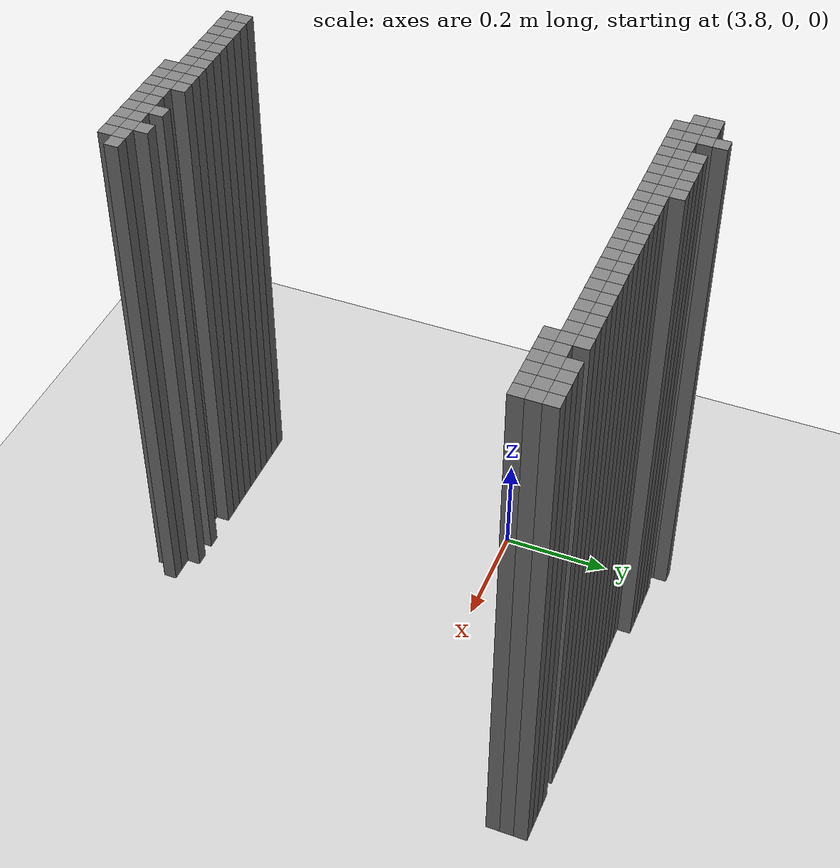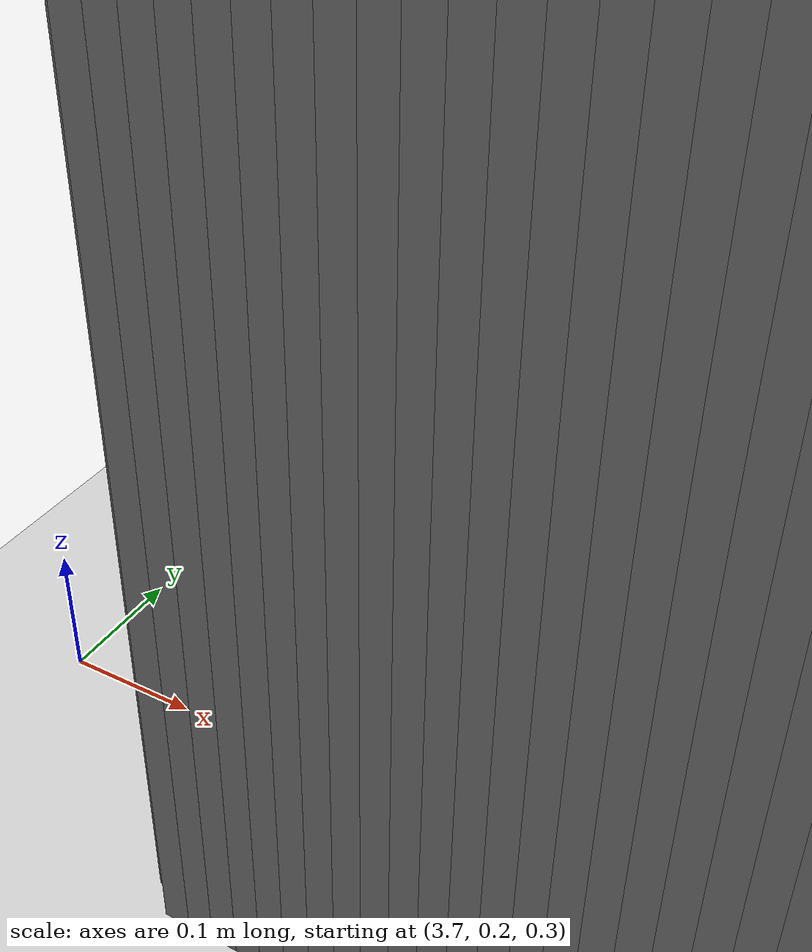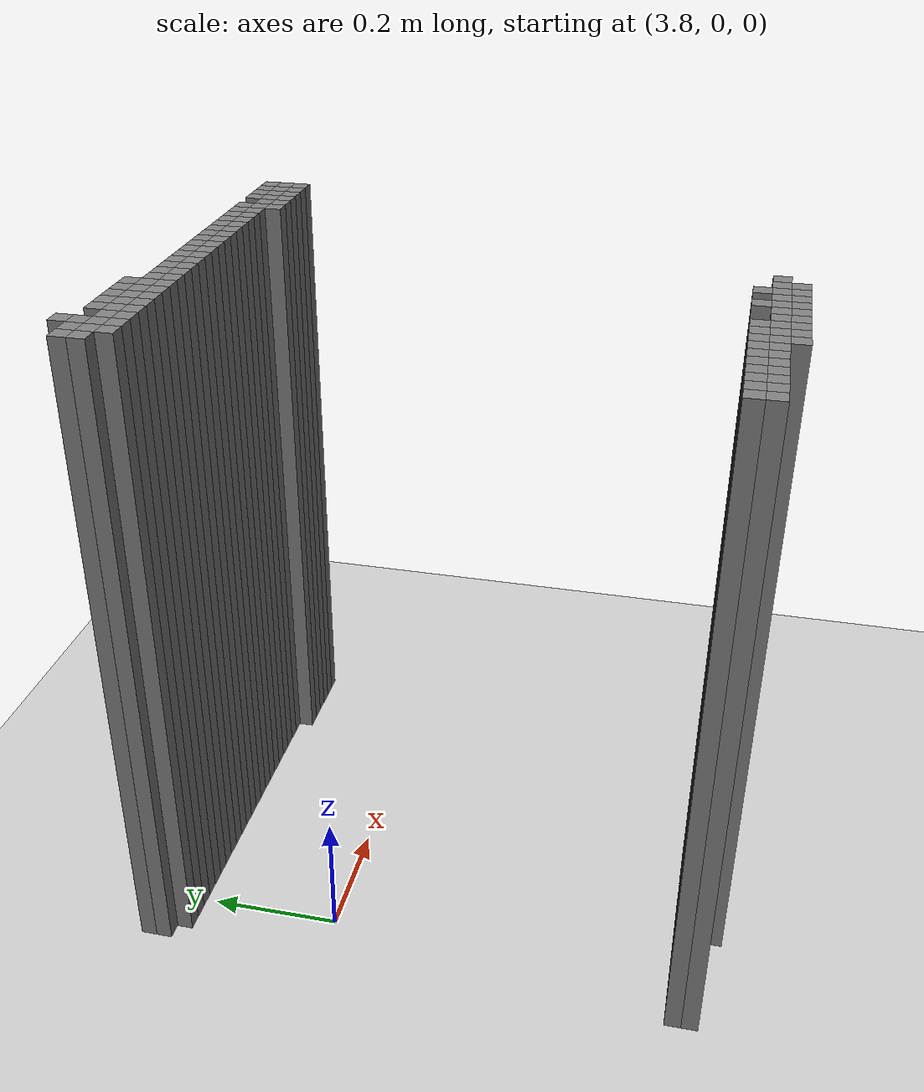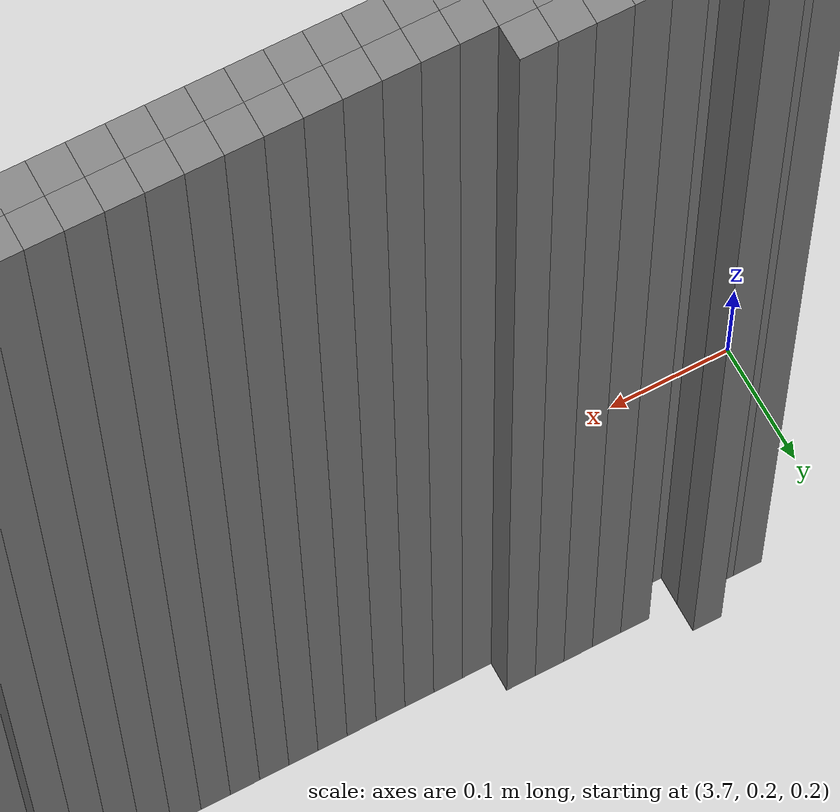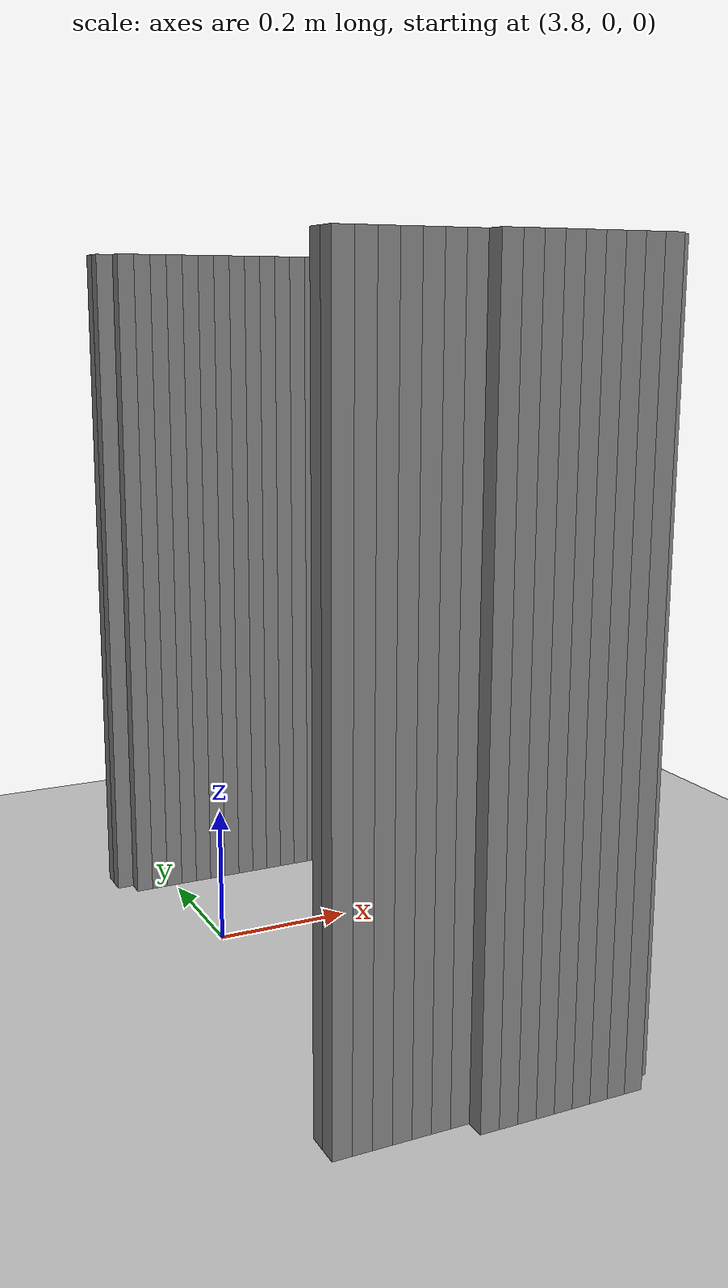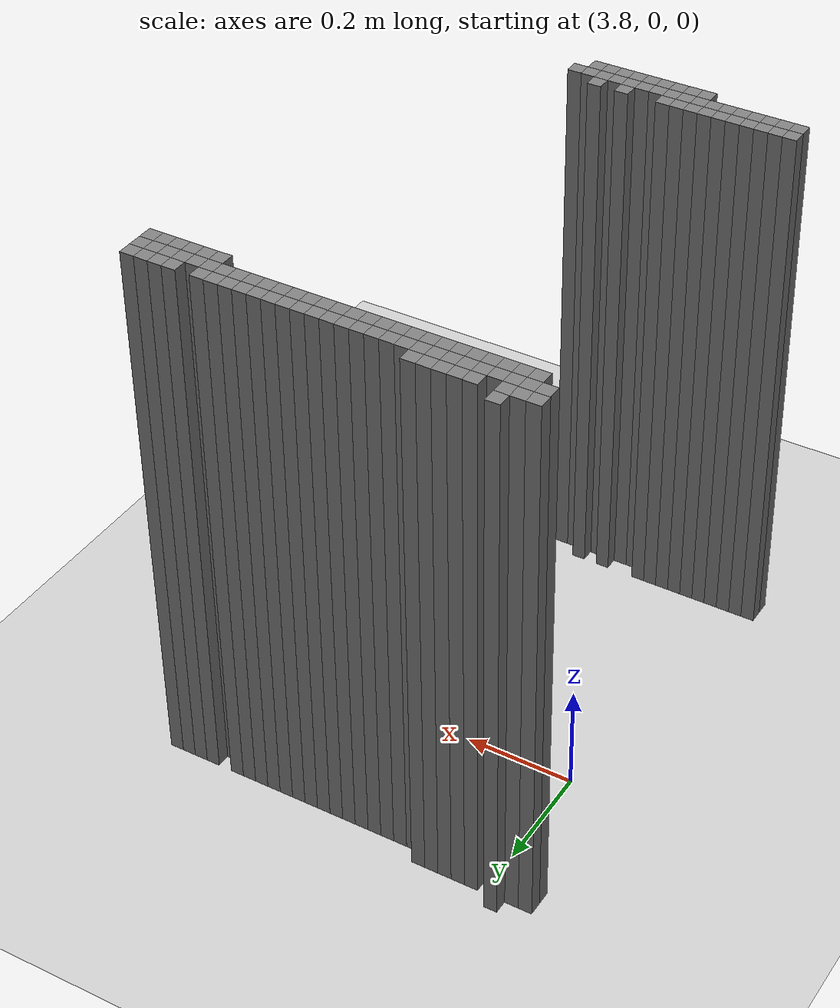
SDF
<sdf version="1.6">
 <world name="map_world">
  <include><uri>model://ground_plane</uri></include>
  <include><uri>model://sun</uri></include>
  <model name="obs_244_37">
   <static>true</static>
   <link name="link">
    <collision name="collision"><geometry><box><size>0.025 0.025 1.0</size></box></geometry></collision>
    <visual name="visual">
     <geometry><box><size>0.025 0.025 1.0</size></box></geometry>
     <material><ambient>0.5 0.5 0.5 1</ambient></material>
    </visual>
   </link>
   <pose>3.7737650000000005 0.30592900000000034 0.5 0 0 0</pose>
  </model>
  <model name="obs_242_38">
   <static>true</static>
   <link name="link">
    <collision name="collision"><geometry><box><size>0.025 0.025 1.0</size></box></geometry></collision>
    <visual name="visual">
     <geometry><box><size>0.025 0.025 1.0</size></box></geometry>
     <material><ambient>0.5 0.5 0.5 1</ambient></material>
    </visual>
   </link>
   <pose>3.7237650000000007 0.280929 0.5 0 0 0</pose>
  </model>
  <model name="obs_243_38">
   <static>true</static>
   <link name="link">
    <collision name="collision"><geometry><box><size>0.025 0.025 1.0</size></box></geometry></collision>
    <visual name="visual">
     <geometry><box><size>0.025 0.025 1.0</size></box></geometry>
     <material><ambient>0.5 0.5 0.5 1</ambient></material>
    </visual>
   </link>
   <pose>3.748765 0.280929 0.5 0 0 0</pose>
  </model>
  <model name="obs_244_38">
   <static>true</static>
   <link name="link">
    <collision name="collision"><geometry><box><size>0.025 0.025 1.0</size></box></geometry></collision>
    <visual name="visual">
     <geometry><box><size>0.025 0.025 1.0</size></box></geometry>
     <material><ambient>0.5 0.5 0.5 1</ambient></material>
    </visual>
   </link>
   <pose>3.7737650000000005 0.280929 0.5 0 0 0</pose>
  </model>
  <model name="obs_246_38">
   <static>true</static>
   <link name="link">
    <collision name="collision"><geometry><box><size>0.025 0.025 1.0</size></box></geometry></collision>
    <visual name="visual">
     <geometry><box><size>0.025 0.025 1.0</size></box></geometry>
     <material><ambient>0.5 0.5 0.5 1</ambient></material>
    </visual>
   </link>
   <pose>3.8237650000000003 0.280929 0.5 0 0 0</pose>
  </model>
  <model name="obs_247_38">
   <static>true</static>
   <link name="link">
    <collision name="collision"><geometry><box><size>0.025 0.025 1.0</size></box></geometry></collision>
    <visual name="visual">
     <geometry><box><size>0.025 0.025 1.0</size></box></geometry>
     <material><ambient>0.5 0.5 0.5 1</ambient></material>
    </visual>
   </link>
   <pose>3.8487650000000007 0.280929 0.5 0 0 0</pose>
  </model>
  <model name="obs_248_38">
   <static>true</static>
   <link name="link">
    <collision name="collision"><geometry><box><size>0.025 0.025 1.0</size></box></geometry></collision>
    <visual name="visual">
     <geometry><box><size>0.025 0.025 1.0</size></box></geometry>
     <material><ambient>0.5 0.5 0.5 1</ambient></material>
    </visual>
   </link>
   <pose>3.873765 0.280929 0.5 0 0 0</pose>
  </model>
  <model name="obs_249_38">
   <static>true</static>
   <link name="link">
    <collision name="collision"><geometry><box><size>0.025 0.025 1.0</size></box></geometry></collision>
    <visual name="visual">
     <geometry><box><size>0.025 0.025 1.0</size></box></geometry>
     <material><ambient>0.5 0.5 0.5 1</ambient></material>
    </visual>
   </link>
   <pose>3.8987650000000005 0.280929 0.5 0 0 0</pose>
  </model>
  <model name="obs_250_38">
   <static>true</static>
   <link name="link">
    <collision name="collision"><geometry><box><size>0.025 0.025 1.0</size></box></geometry></collision>
    <visual name="visual">
     <geometry><box><size>0.025 0.025 1.0</size></box></geometry>
     <material><ambient>0.5 0.5 0.5 1</ambient></material>
    </visual>
   </link>
   <pose>3.923765 0.280929 0.5 0 0 0</pose>
  </model>
  <model name="obs_242_39">
   <static>true</static>
   <link name="link">
    <collision name="collision"><geometry><box><size>0.025 0.025 1.0</size></box></geometry></collision>
    <visual name="visual">
     <geometry><box><size>0.025 0.025 1.0</size></box></geometry>
     <material><ambient>0.5 0.5 0.5 1</ambient></material>
    </visual>
   </link>
   <pose>3.7237650000000007 0.2559290000000001 0.5 0 0 0</pose>
  </model>
  <model name="obs_243_39">
   <static>true</static>
   <link name="link">
    <collision name="collision"><geometry><box><size>0.025 0.025 1.0</size></box></geometry></collision>
    <visual name="visual">
     <geometry><box><size>0.025 0.025 1.0</size></box></geometry>
     <material><ambient>0.5 0.5 0.5 1</ambient></material>
    </visual>
   </link>
   <pose>3.748765 0.2559290000000001 0.5 0 0 0</pose>
  </model>
  <model name="obs_244_39">
   <static>true</static>
   <link name="link">
    <collision name="collision"><geometry><box><size>0.025 0.025 1.0</size></box></geometry></collision>
    <visual name="visual">
     <geometry><box><size>0.025 0.025 1.0</size></box></geometry>
     <material><ambient>0.5 0.5 0.5 1</ambient></material>
    </visual>
   </link>
   <pose>3.7737650000000005 0.2559290000000001 0.5 0 0 0</pose>
  </model>
  <model name="obs_245_39">
   <static>true</static>
   <link name="link">
    <collision name="collision"><geometry><box><size>0.025 0.025 1.0</size></box></geometry></collision>
    <visual name="visual">
     <geometry><box><size>0.025 0.025 1.0</size></box></geometry>
     <material><ambient>0.5 0.5 0.5 1</ambient></material>
    </visual>
   </link>
   <pose>3.798765 0.2559290000000001 0.5 0 0 0</pose>
  </model>
  <model name="obs_246_39">
   <static>true</static>
   <link name="link">
    <collision name="collision"><geometry><box><size>0.025 0.025 1.0</size></box></geometry></collision>
    <visual name="visual">
     <geometry><box><size>0.025 0.025 1.0</size></box></geometry>
     <material><ambient>0.5 0.5 0.5 1</ambient></material>
    </visual>
   </link>
   <pose>3.8237650000000003 0.2559290000000001 0.5 0 0 0</pose>
  </model>
  <model name="obs_247_39">
   <static>true</static>
   <link name="link">
    <collision name="collision"><geometry><box><size>0.025 0.025 1.0</size></box></geometry></collision>
    <visual name="visual">
     <geometry><box><size>0.025 0.025 1.0</size></box></geometry>
     <material><ambient>0.5 0.5 0.5 1</ambient></material>
    </visual>
   </link>
   <pose>3.8487650000000007 0.2559290000000001 0.5 0 0 0</pose>
  </model>
  <model name="obs_248_39">
   <static>true</static>
   <link name="link">
    <collision name="collision"><geometry><box><size>0.025 0.025 1.0</size></box></geometry></collision>
    <visual name="visual">
     <geometry><box><size>0.025 0.025 1.0</size></box></geometry>
     <material><ambient>0.5 0.5 0.5 1</ambient></material>
    </visual>
   </link>
   <pose>3.873765 0.2559290000000001 0.5 0 0 0</pose>
  </model>
  <model name="obs_249_39">
   <static>true</static>
   <link name="link">
    <collision name="collision"><geometry><box><size>0.025 0.025 1.0</size></box></geometry></collision>
    <visual name="visual">
     <geometry><box><size>0.025 0.025 1.0</size></box></geometry>
     <material><ambient>0.5 0.5 0.5 1</ambient></material>
    </visual>
   </link>
   <pose>3.8987650000000005 0.2559290000000001 0.5 0 0 0</pose>
  </model>
  <model name="obs_250_39">
   <static>true</static>
   <link name="link">
    <collision name="collision"><geometry><box><size>0.025 0.025 1.0</size></box></geometry></collision>
    <visual name="visual">
     <geometry><box><size>0.025 0.025 1.0</size></box></geometry>
     <material><ambient>0.5 0.5 0.5 1</ambient></material>
    </visual>
   </link>
   <pose>3.923765 0.2559290000000001 0.5 0 0 0</pose>
  </model>
  <model name="obs_251_39">
   <static>true</static>
   <link name="link">
    <collision name="collision"><geometry><box><size>0.025 0.025 1.0</size></box></geometry></collision>
    <visual name="visual">
     <geometry><box><size>0.025 0.025 1.0</size></box></geometry>
     <material><ambient>0.5 0.5 0.5 1</ambient></material>
    </visual>
   </link>
   <pose>3.9487650000000003 0.2559290000000001 0.5 0 0 0</pose>
  </model>
  <model name="obs_252_39">
   <static>true</static>
   <link name="link">
    <collision name="collision"><geometry><box><size>0.025 0.025 1.0</size></box></geometry></collision>
    <visual name="visual">
     <geometry><box><size>0.025 0.025 1.0</size></box></geometry>
     <material><ambient>0.5 0.5 0.5 1</ambient></material>
    </visual>
   </link>
   <pose>3.9737650000000007 0.2559290000000001 0.5 0 0 0</pose>
  </model>
  <model name="obs_253_39">
   <static>true</static>
   <link name="link">
    <collision name="collision"><geometry><box><size>0.025 0.025 1.0</size></box></geometry></collision>
    <visual name="visual">
     <geometry><box><size>0.025 0.025 1.0</size></box></geometry>
     <material><ambient>0.5 0.5 0.5 1</ambient></material>
    </visual>
   </link>
   <pose>3.998765 0.2559290000000001 0.5 0 0 0</pose>
  </model>
  <model name="obs_254_39">
   <static>true</static>
   <link name="link">
    <collision name="collision"><geometry><box><size>0.025 0.025 1.0</size></box></geometry></collision>
    <visual name="visual">
     <geometry><box><size>0.025 0.025 1.0</size></box></geometry>
     <material><ambient>0.5 0.5 0.5 1</ambient></material>
    </visual>
   </link>
   <pose>4.023765000000001 0.2559290000000001 0.5 0 0 0</pose>
  </model>
  <model name="obs_255_39">
   <static>true</static>
   <link name="link">
    <collision name="collision"><geometry><box><size>0.025 0.025 1.0</size></box></geometry></collision>
    <visual name="visual">
     <geometry><box><size>0.025 0.025 1.0</size></box></geometry>
     <material><ambient>0.5 0.5 0.5 1</ambient></material>
    </visual>
   </link>
   <pose>4.0487649999999995 0.2559290000000001 0.5 0 0 0</pose>
  </model>
  <model name="obs_256_39">
   <static>true</static>
   <link name="link">
    <collision name="collision"><geometry><box><size>0.025 0.025 1.0</size></box></geometry></collision>
    <visual name="visual">
     <geometry><box><size>0.025 0.025 1.0</size></box></geometry>
     <material><ambient>0.5 0.5 0.5 1</ambient></material>
    </visual>
   </link>
   <pose>4.073765 0.2559290000000001 0.5 0 0 0</pose>
  </model>
  <model name="obs_257_39">
   <static>true</static>
   <link name="link">
    <collision name="collision"><geometry><box><size>0.025 0.025 1.0</size></box></geometry></collision>
    <visual name="visual">
     <geometry><box><size>0.025 0.025 1.0</size></box></geometry>
     <material><ambient>0.5 0.5 0.5 1</ambient></material>
    </visual>
   </link>
   <pose>4.098765 0.2559290000000001 0.5 0 0 0</pose>
  </model>
  <model name="obs_258_39">
   <static>true</static>
   <link name="link">
    <collision name="collision"><geometry><box><size>0.025 0.025 1.0</size></box></geometry></collision>
    <visual name="visual">
     <geometry><box><size>0.025 0.025 1.0</size></box></geometry>
     <material><ambient>0.5 0.5 0.5 1</ambient></material>
    </visual>
   </link>
   <pose>4.123765000000001 0.2559290000000001 0.5 0 0 0</pose>
  </model>
  <model name="obs_259_39">
   <static>true</static>
   <link name="link">
    <collision name="collision"><geometry><box><size>0.025 0.025 1.0</size></box></geometry></collision>
    <visual name="visual">
     <geometry><box><size>0.025 0.025 1.0</size></box></geometry>
     <material><ambient>0.5 0.5 0.5 1</ambient></material>
    </visual>
   </link>
   <pose>4.148765000000001 0.2559290000000001 0.5 0 0 0</pose>
  </model>
  <model name="obs_260_39">
   <static>true</static>
   <link name="link">
    <collision name="collision"><geometry><box><size>0.025 0.025 1.0</size></box></geometry></collision>
    <visual name="visual">
     <geometry><box><size>0.025 0.025 1.0</size></box></geometry>
     <material><ambient>0.5 0.5 0.5 1</ambient></material>
    </visual>
   </link>
   <pose>4.1737649999999995 0.2559290000000001 0.5 0 0 0</pose>
  </model>
  <model name="obs_261_39">
   <static>true</static>
   <link name="link">
    <collision name="collision"><geometry><box><size>0.025 0.025 1.0</size></box></geometry></collision>
    <visual name="visual">
     <geometry><box><size>0.025 0.025 1.0</size></box></geometry>
     <material><ambient>0.5 0.5 0.5 1</ambient></material>
    </visual>
   </link>
   <pose>4.198765 0.2559290000000001 0.5 0 0 0</pose>
  </model>
  <model name="obs_262_39">
   <static>true</static>
   <link name="link">
    <collision name="collision"><geometry><box><size>0.025 0.025 1.0</size></box></geometry></collision>
    <visual name="visual">
     <geometry><box><size>0.025 0.025 1.0</size></box></geometry>
     <material><ambient>0.5 0.5 0.5 1</ambient></material>
    </visual>
   </link>
   <pose>4.223765 0.2559290000000001 0.5 0 0 0</pose>
  </model>
  <model name="obs_263_39">
   <static>true</static>
   <link name="link">
    <collision name="collision"><geometry><box><size>0.025 0.025 1.0</size></box></geometry></collision>
    <visual name="visual">
     <geometry><box><size>0.025 0.025 1.0</size></box></geometry>
     <material><ambient>0.5 0.5 0.5 1</ambient></material>
    </visual>
   </link>
   <pose>4.248765000000001 0.2559290000000001 0.5 0 0 0</pose>
  </model>
  <model name="obs_264_39">
   <static>true</static>
   <link name="link">
    <collision name="collision"><geometry><box><size>0.025 0.025 1.0</size></box></geometry></collision>
    <visual name="visual">
     <geometry><box><size>0.025 0.025 1.0</size></box></geometry>
     <material><ambient>0.5 0.5 0.5 1</ambient></material>
    </visual>
   </link>
   <pose>4.273765000000001 0.2559290000000001 0.5 0 0 0</pose>
  </model>
  <model name="obs_265_39">
   <static>true</static>
   <link name="link">
    <collision name="collision"><geometry><box><size>0.025 0.025 1.0</size></box></geometry></collision>
    <visual name="visual">
     <geometry><box><size>0.025 0.025 1.0</size></box></geometry>
     <material><ambient>0.5 0.5 0.5 1</ambient></material>
    </visual>
   </link>
   <pose>4.2987649999999995 0.2559290000000001 0.5 0 0 0</pose>
  </model>
  <model name="obs_267_39">
   <static>true</static>
   <link name="link">
    <collision name="collision"><geometry><box><size>0.025 0.025 1.0</size></box></geometry></collision>
    <visual name="visual">
     <geometry><box><size>0.025 0.025 1.0</size></box></geometry>
     <material><ambient>0.5 0.5 0.5 1</ambient></material>
    </visual>
   </link>
   <pose>4.348765 0.2559290000000001 0.5 0 0 0</pose>
  </model>
  <model name="obs_268_39">
   <static>true</static>
   <link name="link">
    <collision name="collision"><geometry><box><size>0.025 0.025 1.0</size></box></geometry></collision>
    <visual name="visual">
     <geometry><box><size>0.025 0.025 1.0</size></box></geometry>
     <material><ambient>0.5 0.5 0.5 1</ambient></material>
    </visual>
   </link>
   <pose>4.373765000000001 0.2559290000000001 0.5 0 0 0</pose>
  </model>
  <model name="obs_269_39">
   <static>true</static>
   <link name="link">
    <collision name="collision"><geometry><box><size>0.025 0.025 1.0</size></box></geometry></collision>
    <visual name="visual">
     <geometry><box><size>0.025 0.025 1.0</size></box></geometry>
     <material><ambient>0.5 0.5 0.5 1</ambient></material>
    </visual>
   </link>
   <pose>4.398765000000001 0.2559290000000001 0.5 0 0 0</pose>
  </model>
  <model name="obs_270_39">
   <static>true</static>
   <link name="link">
    <collision name="collision"><geometry><box><size>0.025 0.025 1.0</size></box></geometry></collision>
    <visual name="visual">
     <geometry><box><size>0.025 0.025 1.0</size></box></geometry>
     <material><ambient>0.5 0.5 0.5 1</ambient></material>
    </visual>
   </link>
   <pose>4.4237649999999995 0.2559290000000001 0.5 0 0 0</pose>
  </model>
  <model name="obs_243_40">
   <static>true</static>
   <link name="link">
    <collision name="collision"><geometry><box><size>0.025 0.025 1.0</size></box></geometry></collision>
    <visual name="visual">
     <geometry><box><size>0.025 0.025 1.0</size></box></geometry>
     <material><ambient>0.5 0.5 0.5 1</ambient></material>
    </visual>
   </link>
   <pose>3.748765 0.23092900000000016 0.5 0 0 0</pose>
  </model>
  <model name="obs_244_40">
   <static>true</static>
   <link name="link">
    <collision name="collision"><geometry><box><size>0.025 0.025 1.0</size></box></geometry></collision>
    <visual name="visual">
     <geometry><box><size>0.025 0.025 1.0</size></box></geometry>
     <material><ambient>0.5 0.5 0.5 1</ambient></material>
    </visual>
   </link>
   <pose>3.7737650000000005 0.23092900000000016 0.5 0 0 0</pose>
  </model>
  <model name="obs_245_40">
   <static>true</static>
   <link name="link">
    <collision name="collision"><geometry><box><size>0.025 0.025 1.0</size></box></geometry></collision>
    <visual name="visual">
     <geometry><box><size>0.025 0.025 1.0</size></box></geometry>
     <material><ambient>0.5 0.5 0.5 1</ambient></material>
    </visual>
   </link>
   <pose>3.798765 0.23092900000000016 0.5 0 0 0</pose>
  </model>
  <model name="obs_246_40">
   <static>true</static>
   <link name="link">
    <collision name="collision"><geometry><box><size>0.025 0.025 1.0</size></box></geometry></collision>
    <visual name="visual">
     <geometry><box><size>0.025 0.025 1.0</size></box></geometry>
     <material><ambient>0.5 0.5 0.5 1</ambient></material>
    </visual>
   </link>
   <pose>3.8237650000000003 0.23092900000000016 0.5 0 0 0</pose>
  </model>
  <model name="obs_247_40">
   <static>true</static>
   <link name="link">
    <collision name="collision"><geometry><box><size>0.025 0.025 1.0</size></box></geometry></collision>
    <visual name="visual">
     <geometry><box><size>0.025 0.025 1.0</size></box></geometry>
     <material><ambient>0.5 0.5 0.5 1</ambient></material>
    </visual>
   </link>
   <pose>3.8487650000000007 0.23092900000000016 0.5 0 0 0</pose>
  </model>
  <model name="obs_248_40">
   <static>true</static>
   <link name="link">
    <collision name="collision"><geometry><box><size>0.025 0.025 1.0</size></box></geometry></collision>
    <visual name="visual">
     <geometry><box><size>0.025 0.025 1.0</size></box></geometry>
     <material><ambient>0.5 0.5 0.5 1</ambient></material>
    </visual>
   </link>
   <pose>3.873765 0.23092900000000016 0.5 0 0 0</pose>
  </model>
  <model name="obs_249_40">
   <static>true</static>
   <link name="link">
    <collision name="collision"><geometry><box><size>0.025 0.025 1.0</size></box></geometry></collision>
    <visual name="visual">
     <geometry><box><size>0.025 0.025 1.0</size></box></geometry>
     <material><ambient>0.5 0.5 0.5 1</ambient></material>
    </visual>
   </link>
   <pose>3.8987650000000005 0.23092900000000016 0.5 0 0 0</pose>
  </model>
  <model name="obs_250_40">
   <static>true</static>
   <link name="link">
    <collision name="collision"><geometry><box><size>0.025 0.025 1.0</size></box></geometry></collision>
    <visual name="visual">
     <geometry><box><size>0.025 0.025 1.0</size></box></geometry>
     <material><ambient>0.5 0.5 0.5 1</ambient></material>
    </visual>
   </link>
   <pose>3.923765 0.23092900000000016 0.5 0 0 0</pose>
  </model>
  <model name="obs_251_40">
   <static>true</static>
   <link name="link">
    <collision name="collision"><geometry><box><size>0.025 0.025 1.0</size></box></geometry></collision>
    <visual name="visual">
     <geometry><box><size>0.025 0.025 1.0</size></box></geometry>
     <material><ambient>0.5 0.5 0.5 1</ambient></material>
    </visual>
   </link>
   <pose>3.9487650000000003 0.23092900000000016 0.5 0 0 0</pose>
  </model>
  <model name="obs_252_40">
   <static>true</static>
   <link name="link">
    <collision name="collision"><geometry><box><size>0.025 0.025 1.0</size></box></geometry></collision>
    <visual name="visual">
     <geometry><box><size>0.025 0.025 1.0</size></box></geometry>
     <material><ambient>0.5 0.5 0.5 1</ambient></material>
    </visual>
   </link>
   <pose>3.9737650000000007 0.23092900000000016 0.5 0 0 0</pose>
  </model>
  <model name="obs_253_40">
   <static>true</static>
   <link name="link">
    <collision name="collision"><geometry><box><size>0.025 0.025 1.0</size></box></geometry></collision>
    <visual name="visual">
     <geometry><box><size>0.025 0.025 1.0</size></box></geometry>
     <material><ambient>0.5 0.5 0.5 1</ambient></material>
    </visual>
   </link>
   <pose>3.998765 0.23092900000000016 0.5 0 0 0</pose>
  </model>
  <model name="obs_254_40">
   <static>true</static>
   <link name="link">
    <collision name="collision"><geometry><box><size>0.025 0.025 1.0</size></box></geometry></collision>
    <visual name="visual">
     <geometry><box><size>0.025 0.025 1.0</size></box></geometry>
     <material><ambient>0.5 0.5 0.5 1</ambient></material>
    </visual>
   </link>
   <pose>4.023765000000001 0.23092900000000016 0.5 0 0 0</pose>
  </model>
  <model name="obs_255_40">
   <static>true</static>
   <link name="link">
    <collision name="collision"><geometry><box><size>0.025 0.025 1.0</size></box></geometry></collision>
    <visual name="visual">
     <geometry><box><size>0.025 0.025 1.0</size></box></geometry>
     <material><ambient>0.5 0.5 0.5 1</ambient></material>
    </visual>
   </link>
   <pose>4.0487649999999995 0.23092900000000016 0.5 0 0 0</pose>
  </model>
  <model name="obs_256_40">
   <static>true</static>
   <link name="link">
    <collision name="collision"><geometry><box><size>0.025 0.025 1.0</size></box></geometry></collision>
    <visual name="visual">
     <geometry><box><size>0.025 0.025 1.0</size></box></geometry>
     <material><ambient>0.5 0.5 0.5 1</ambient></material>
    </visual>
   </link>
   <pose>4.073765 0.23092900000000016 0.5 0 0 0</pose>
  </model>
  <model name="obs_257_40">
   <static>true</static>
   <link name="link">
    <collision name="collision"><geometry><box><size>0.025 0.025 1.0</size></box></geometry></collision>
    <visual name="visual">
     <geometry><box><size>0.025 0.025 1.0</size></box></geometry>
     <material><ambient>0.5 0.5 0.5 1</ambient></material>
    </visual>
   </link>
   <pose>4.098765 0.23092900000000016 0.5 0 0 0</pose>
  </model>
  <model name="obs_258_40">
   <static>true</static>
   <link name="link">
    <collision name="collision"><geometry><box><size>0.025 0.025 1.0</size></box></geometry></collision>
    <visual name="visual">
     <geometry><box><size>0.025 0.025 1.0</size></box></geometry>
     <material><ambient>0.5 0.5 0.5 1</ambient></material>
    </visual>
   </link>
   <pose>4.123765000000001 0.23092900000000016 0.5 0 0 0</pose>
  </model>
  <model name="obs_259_40">
   <static>true</static>
   <link name="link">
    <collision name="collision"><geometry><box><size>0.025 0.025 1.0</size></box></geometry></collision>
    <visual name="visual">
     <geometry><box><size>0.025 0.025 1.0</size></box></geometry>
     <material><ambient>0.5 0.5 0.5 1</ambient></material>
    </visual>
   </link>
   <pose>4.148765000000001 0.23092900000000016 0.5 0 0 0</pose>
  </model>
  <model name="obs_260_40">
   <static>true</static>
   <link name="link">
    <collision name="collision"><geometry><box><size>0.025 0.025 1.0</size></box></geometry></collision>
    <visual name="visual">
     <geometry><box><size>0.025 0.025 1.0</size></box></geometry>
     <material><ambient>0.5 0.5 0.5 1</ambient></material>
    </visual>
   </link>
   <pose>4.1737649999999995 0.23092900000000016 0.5 0 0 0</pose>
  </model>
  <model name="obs_261_40">
   <static>true</static>
   <link name="link">
    <collision name="collision"><geometry><box><size>0.025 0.025 1.0</size></box></geometry></collision>
    <visual name="visual">
     <geometry><box><size>0.025 0.025 1.0</size></box></geometry>
     <material><ambient>0.5 0.5 0.5 1</ambient></material>
    </visual>
   </link>
   <pose>4.198765 0.23092900000000016 0.5 0 0 0</pose>
  </model>
  <model name="obs_262_40">
   <static>true</static>
   <link name="link">
    <collision name="collision"><geometry><box><size>0.025 0.025 1.0</size></box></geometry></collision>
    <visual name="visual">
     <geometry><box><size>0.025 0.025 1.0</size></box></geometry>
     <material><ambient>0.5 0.5 0.5 1</ambient></material>
    </visual>
   </link>
   <pose>4.223765 0.23092900000000016 0.5 0 0 0</pose>
  </model>
  <model name="obs_263_40">
   <static>true</static>
   <link name="link">
    <collision name="collision"><geometry><box><size>0.025 0.025 1.0</size></box></geometry></collision>
    <visual name="visual">
     <geometry><box><size>0.025 0.025 1.0</size></box></geometry>
     <material><ambient>0.5 0.5 0.5 1</ambient></material>
    </visual>
   </link>
   <pose>4.248765000000001 0.23092900000000016 0.5 0 0 0</pose>
  </model>
  <model name="obs_264_40">
   <static>true</static>
   <link name="link">
    <collision name="collision"><geometry><box><size>0.025 0.025 1.0</size></box></geometry></collision>
    <visual name="visual">
     <geometry><box><size>0.025 0.025 1.0</size></box></geometry>
     <material><ambient>0.5 0.5 0.5 1</ambient></material>
    </visual>
   </link>
   <pose>4.273765000000001 0.23092900000000016 0.5 0 0 0</pose>
  </model>
  <model name="obs_265_40">
   <static>true</static>
   <link name="link">
    <collision name="collision"><geometry><box><size>0.025 0.025 1.0</size></box></geometry></collision>
    <visual name="visual">
     <geometry><box><size>0.025 0.025 1.0</size></box></geometry>
     <material><ambient>0.5 0.5 0.5 1</ambient></material>
    </visual>
   </link>
   <pose>4.2987649999999995 0.23092900000000016 0.5 0 0 0</pose>
  </model>
  <model name="obs_266_40">
   <static>true</static>
   <link name="link">
    <collision name="collision"><geometry><box><size>0.025 0.025 1.0</size></box></geometry></collision>
    <visual name="visual">
     <geometry><box><size>0.025 0.025 1.0</size></box></geometry>
     <material><ambient>0.5 0.5 0.5 1</ambient></material>
    </visual>
   </link>
   <pose>4.323765 0.23092900000000016 0.5 0 0 0</pose>
  </model>
  <model name="obs_267_40">
   <static>true</static>
   <link name="link">
    <collision name="collision"><geometry><box><size>0.025 0.025 1.0</size></box></geometry></collision>
    <visual name="visual">
     <geometry><box><size>0.025 0.025 1.0</size></box></geometry>
     <material><ambient>0.5 0.5 0.5 1</ambient></material>
    </visual>
   </link>
   <pose>4.348765 0.23092900000000016 0.5 0 0 0</pose>
  </model>
  <model name="obs_268_40">
   <static>true</static>
   <link name="link">
    <collision name="collision"><geometry><box><size>0.025 0.025 1.0</size></box></geometry></collision>
    <visual name="visual">
     <geometry><box><size>0.025 0.025 1.0</size></box></geometry>
     <material><ambient>0.5 0.5 0.5 1</ambient></material>
    </visual>
   </link>
   <pose>4.373765000000001 0.23092900000000016 0.5 0 0 0</pose>
  </model>
  <model name="obs_269_40">
   <static>true</static>
   <link name="link">
    <collision name="collision"><geometry><box><size>0.025 0.025 1.0</size></box></geometry></collision>
    <visual name="visual">
     <geometry><box><size>0.025 0.025 1.0</size></box></geometry>
     <material><ambient>0.5 0.5 0.5 1</ambient></material>
    </visual>
   </link>
   <pose>4.398765000000001 0.23092900000000016 0.5 0 0 0</pose>
  </model>
  <model name="obs_270_40">
   <static>true</static>
   <link name="link">
    <collision name="collision"><geometry><box><size>0.025 0.025 1.0</size></box></geometry></collision>
    <visual name="visual">
     <geometry><box><size>0.025 0.025 1.0</size></box></geometry>
     <material><ambient>0.5 0.5 0.5 1</ambient></material>
    </visual>
   </link>
   <pose>4.4237649999999995 0.23092900000000016 0.5 0 0 0</pose>
  </model>
  <model name="obs_265_41">
   <static>true</static>
   <link name="link">
    <collision name="collision"><geometry><box><size>0.025 0.025 1.0</size></box></geometry></collision>
    <visual name="visual">
     <geometry><box><size>0.025 0.025 1.0</size></box></geometry>
     <material><ambient>0.5 0.5 0.5 1</ambient></material>
    </visual>
   </link>
   <pose>4.2987649999999995 0.20592900000000025 0.5 0 0 0</pose>
  </model>
  <model name="obs_266_41">
   <static>true</static>
   <link name="link">
    <collision name="collision"><geometry><box><size>0.025 0.025 1.0</size></box></geometry></collision>
    <visual name="visual">
     <geometry><box><size>0.025 0.025 1.0</size></box></geometry>
     <material><ambient>0.5 0.5 0.5 1</ambient></material>
    </visual>
   </link>
   <pose>4.323765 0.20592900000000025 0.5 0 0 0</pose>
  </model>
  <model name="obs_267_41">
   <static>true</static>
   <link name="link">
    <collision name="collision"><geometry><box><size>0.025 0.025 1.0</size></box></geometry></collision>
    <visual name="visual">
     <geometry><box><size>0.025 0.025 1.0</size></box></geometry>
     <material><ambient>0.5 0.5 0.5 1</ambient></material>
    </visual>
   </link>
   <pose>4.348765 0.20592900000000025 0.5 0 0 0</pose>
  </model>
  <model name="obs_268_41">
   <static>true</static>
   <link name="link">
    <collision name="collision"><geometry><box><size>0.025 0.025 1.0</size></box></geometry></collision>
    <visual name="visual">
     <geometry><box><size>0.025 0.025 1.0</size></box></geometry>
     <material><ambient>0.5 0.5 0.5 1</ambient></material>
    </visual>
   </link>
   <pose>4.373765000000001 0.20592900000000025 0.5 0 0 0</pose>
  </model>
  <model name="obs_269_41">
   <static>true</static>
   <link name="link">
    <collision name="collision"><geometry><box><size>0.025 0.025 1.0</size></box></geometry></collision>
    <visual name="visual">
     <geometry><box><size>0.025 0.025 1.0</size></box></geometry>
     <material><ambient>0.5 0.5 0.5 1</ambient></material>
    </visual>
   </link>
   <pose>4.398765000000001 0.20592900000000025 0.5 0 0 0</pose>
  </model>
  <model name="obs_270_41">
   <static>true</static>
   <link name="link">
    <collision name="collision"><geometry><box><size>0.025 0.025 1.0</size></box></geometry></collision>
    <visual name="visual">
     <geometry><box><size>0.025 0.025 1.0</size></box></geometry>
     <material><ambient>0.5 0.5 0.5 1</ambient></material>
    </visual>
   </link>
   <pose>4.4237649999999995 0.20592900000000025 0.5 0 0 0</pose>
  </model>
  <model name="obs_242_71">
   <static>true</static>
   <link name="link">
    <collision name="collision"><geometry><box><size>0.025 0.025 1.0</size></box></geometry></collision>
    <visual name="visual">
     <geometry><box><size>0.025 0.025 1.0</size></box></geometry>
     <material><ambient>0.5 0.5 0.5 1</ambient></material>
    </visual>
   </link>
   <pose>3.7237650000000007 -0.5440709999999997 0.5 0 0 0</pose>
  </model>
  <model name="obs_243_71">
   <static>true</static>
   <link name="link">
    <collision name="collision"><geometry><box><size>0.025 0.025 1.0</size></box></geometry></collision>
    <visual name="visual">
     <geometry><box><size>0.025 0.025 1.0</size></box></geometry>
     <material><ambient>0.5 0.5 0.5 1</ambient></material>
    </visual>
   </link>
   <pose>3.748765 -0.5440709999999997 0.5 0 0 0</pose>
  </model>
  <model name="obs_244_71">
   <static>true</static>
   <link name="link">
    <collision name="collision"><geometry><box><size>0.025 0.025 1.0</size></box></geometry></collision>
    <visual name="visual">
     <geometry><box><size>0.025 0.025 1.0</size></box></geometry>
     <material><ambient>0.5 0.5 0.5 1</ambient></material>
    </visual>
   </link>
   <pose>3.7737650000000005 -0.5440709999999997 0.5 0 0 0</pose>
  </model>
  <model name="obs_245_71">
   <static>true</static>
   <link name="link">
    <collision name="collision"><geometry><box><size>0.025 0.025 1.0</size></box></geometry></collision>
    <visual name="visual">
     <geometry><box><size>0.025 0.025 1.0</size></box></geometry>
     <material><ambient>0.5 0.5 0.5 1</ambient></material>
    </visual>
   </link>
   <pose>3.798765 -0.5440709999999997 0.5 0 0 0</pose>
  </model>
  <model name="obs_246_71">
   <static>true</static>
   <link name="link">
    <collision name="collision"><geometry><box><size>0.025 0.025 1.0</size></box></geometry></collision>
    <visual name="visual">
     <geometry><box><size>0.025 0.025 1.0</size></box></geometry>
     <material><ambient>0.5 0.5 0.5 1</ambient></material>
    </visual>
   </link>
   <pose>3.8237650000000003 -0.5440709999999997 0.5 0 0 0</pose>
  </model>
  <model name="obs_247_71">
   <static>true</static>
   <link name="link">
    <collision name="collision"><geometry><box><size>0.025 0.025 1.0</size></box></geometry></collision>
    <visual name="visual">
     <geometry><box><size>0.025 0.025 1.0</size></box></geometry>
     <material><ambient>0.5 0.5 0.5 1</ambient></material>
    </visual>
   </link>
   <pose>3.8487650000000007 -0.5440709999999997 0.5 0 0 0</pose>
  </model>
  <model name="obs_248_71">
   <static>true</static>
   <link name="link">
    <collision name="collision"><geometry><box><size>0.025 0.025 1.0</size></box></geometry></collision>
    <visual name="visual">
     <geometry><box><size>0.025 0.025 1.0</size></box></geometry>
     <material><ambient>0.5 0.5 0.5 1</ambient></material>
    </visual>
   </link>
   <pose>3.873765 -0.5440709999999997 0.5 0 0 0</pose>
  </model>
  <model name="obs_249_71">
   <static>true</static>
   <link name="link">
    <collision name="collision"><geometry><box><size>0.025 0.025 1.0</size></box></geometry></collision>
    <visual name="visual">
     <geometry><box><size>0.025 0.025 1.0</size></box></geometry>
     <material><ambient>0.5 0.5 0.5 1</ambient></material>
    </visual>
   </link>
   <pose>3.8987650000000005 -0.5440709999999997 0.5 0 0 0</pose>
  </model>
  <model name="obs_250_71">
   <static>true</static>
   <link name="link">
    <collision name="collision"><geometry><box><size>0.025 0.025 1.0</size></box></geometry></collision>
    <visual name="visual">
     <geometry><box><size>0.025 0.025 1.0</size></box></geometry>
     <material><ambient>0.5 0.5 0.5 1</ambient></material>
    </visual>
   </link>
   <pose>3.923765 -0.5440709999999997 0.5 0 0 0</pose>
  </model>
  <model name="obs_251_71">
   <static>true</static>
   <link name="link">
    <collision name="collision"><geometry><box><size>0.025 0.025 1.0</size></box></geometry></collision>
    <visual name="visual">
     <geometry><box><size>0.025 0.025 1.0</size></box></geometry>
     <material><ambient>0.5 0.5 0.5 1</ambient></material>
    </visual>
   </link>
   <pose>3.9487650000000003 -0.5440709999999997 0.5 0 0 0</pose>
  </model>
  <model name="obs_254_71">
   <static>true</static>
   <link name="link">
    <collision name="collision"><geometry><box><size>0.025 0.025 1.0</size></box></geometry></collision>
    <visual name="visual">
     <geometry><box><size>0.025 0.025 1.0</size></box></geometry>
     <material><ambient>0.5 0.5 0.5 1</ambient></material>
    </visual>
   </link>
   <pose>4.023765000000001 -0.5440709999999997 0.5 0 0 0</pose>
  </model>
  <model name="obs_256_71">
   <static>true</static>
   <link name="link">
    <collision name="collision"><geometry><box><size>0.025 0.025 1.0</size></box></geometry></collision>
    <visual name="visual">
     <geometry><box><size>0.025 0.025 1.0</size></box></geometry>
     <material><ambient>0.5 0.5 0.5 1</ambient></material>
    </visual>
   </link>
   <pose>4.073765 -0.5440709999999997 0.5 0 0 0</pose>
  </model>
  <model name="obs_242_72">
   <static>true</static>
   <link name="link">
    <collision name="collision"><geometry><box><size>0.025 0.025 1.0</size></box></geometry></collision>
    <visual name="visual">
     <geometry><box><size>0.025 0.025 1.0</size></box></geometry>
     <material><ambient>0.5 0.5 0.5 1</ambient></material>
    </visual>
   </link>
   <pose>3.7237650000000007 -0.5690709999999999 0.5 0 0 0</pose>
  </model>
  <model name="obs_243_72">
   <static>true</static>
   <link name="link">
    <collision name="collision"><geometry><box><size>0.025 0.025 1.0</size></box></geometry></collision>
    <visual name="visual">
     <geometry><box><size>0.025 0.025 1.0</size></box></geometry>
     <material><ambient>0.5 0.5 0.5 1</ambient></material>
    </visual>
   </link>
   <pose>3.748765 -0.5690709999999999 0.5 0 0 0</pose>
  </model>
  <model name="obs_244_72">
   <static>true</static>
   <link name="link">
    <collision name="collision"><geometry><box><size>0.025 0.025 1.0</size></box></geometry></collision>
    <visual name="visual">
     <geometry><box><size>0.025 0.025 1.0</size></box></geometry>
     <material><ambient>0.5 0.5 0.5 1</ambient></material>
    </visual>
   </link>
   <pose>3.7737650000000005 -0.5690709999999999 0.5 0 0 0</pose>
  </model>
  <model name="obs_245_72">
   <static>true</static>
   <link name="link">
    <collision name="collision"><geometry><box><size>0.025 0.025 1.0</size></box></geometry></collision>
    <visual name="visual">
     <geometry><box><size>0.025 0.025 1.0</size></box></geometry>
     <material><ambient>0.5 0.5 0.5 1</ambient></material>
    </visual>
   </link>
   <pose>3.798765 -0.5690709999999999 0.5 0 0 0</pose>
  </model>
  <model name="obs_246_72">
   <static>true</static>
   <link name="link">
    <collision name="collision"><geometry><box><size>0.025 0.025 1.0</size></box></geometry></collision>
    <visual name="visual">
     <geometry><box><size>0.025 0.025 1.0</size></box></geometry>
     <material><ambient>0.5 0.5 0.5 1</ambient></material>
    </visual>
   </link>
   <pose>3.8237650000000003 -0.5690709999999999 0.5 0 0 0</pose>
  </model>
  <model name="obs_247_72">
   <static>true</static>
   <link name="link">
    <collision name="collision"><geometry><box><size>0.025 0.025 1.0</size></box></geometry></collision>
    <visual name="visual">
     <geometry><box><size>0.025 0.025 1.0</size></box></geometry>
     <material><ambient>0.5 0.5 0.5 1</ambient></material>
    </visual>
   </link>
   <pose>3.8487650000000007 -0.5690709999999999 0.5 0 0 0</pose>
  </model>
  <model name="obs_248_72">
   <static>true</static>
   <link name="link">
    <collision name="collision"><geometry><box><size>0.025 0.025 1.0</size></box></geometry></collision>
    <visual name="visual">
     <geometry><box><size>0.025 0.025 1.0</size></box></geometry>
     <material><ambient>0.5 0.5 0.5 1</ambient></material>
    </visual>
   </link>
   <pose>3.873765 -0.5690709999999999 0.5 0 0 0</pose>
  </model>
  <model name="obs_249_72">
   <static>true</static>
   <link name="link">
    <collision name="collision"><geometry><box><size>0.025 0.025 1.0</size></box></geometry></collision>
    <visual name="visual">
     <geometry><box><size>0.025 0.025 1.0</size></box></geometry>
     <material><ambient>0.5 0.5 0.5 1</ambient></material>
    </visual>
   </link>
   <pose>3.8987650000000005 -0.5690709999999999 0.5 0 0 0</pose>
  </model>
  <model name="obs_250_72">
   <static>true</static>
   <link name="link">
    <collision name="collision"><geometry><box><size>0.025 0.025 1.0</size></box></geometry></collision>
    <visual name="visual">
     <geometry><box><size>0.025 0.025 1.0</size></box></geometry>
     <material><ambient>0.5 0.5 0.5 1</ambient></material>
    </visual>
   </link>
   <pose>3.923765 -0.5690709999999999 0.5 0 0 0</pose>
  </model>
  <model name="obs_251_72">
   <static>true</static>
   <link name="link">
    <collision name="collision"><geometry><box><size>0.025 0.025 1.0</size></box></geometry></collision>
    <visual name="visual">
     <geometry><box><size>0.025 0.025 1.0</size></box></geometry>
     <material><ambient>0.5 0.5 0.5 1</ambient></material>
    </visual>
   </link>
   <pose>3.9487650000000003 -0.5690709999999999 0.5 0 0 0</pose>
  </model>
  <model name="obs_252_72">
   <static>true</static>
   <link name="link">
    <collision name="collision"><geometry><box><size>0.025 0.025 1.0</size></box></geometry></collision>
    <visual name="visual">
     <geometry><box><size>0.025 0.025 1.0</size></box></geometry>
     <material><ambient>0.5 0.5 0.5 1</ambient></material>
    </visual>
   </link>
   <pose>3.9737650000000007 -0.5690709999999999 0.5 0 0 0</pose>
  </model>
  <model name="obs_253_72">
   <static>true</static>
   <link name="link">
    <collision name="collision"><geometry><box><size>0.025 0.025 1.0</size></box></geometry></collision>
    <visual name="visual">
     <geometry><box><size>0.025 0.025 1.0</size></box></geometry>
     <material><ambient>0.5 0.5 0.5 1</ambient></material>
    </visual>
   </link>
   <pose>3.998765 -0.5690709999999999 0.5 0 0 0</pose>
  </model>
  <model name="obs_254_72">
   <static>true</static>
   <link name="link">
    <collision name="collision"><geometry><box><size>0.025 0.025 1.0</size></box></geometry></collision>
    <visual name="visual">
     <geometry><box><size>0.025 0.025 1.0</size></box></geometry>
     <material><ambient>0.5 0.5 0.5 1</ambient></material>
    </visual>
   </link>
   <pose>4.023765000000001 -0.5690709999999999 0.5 0 0 0</pose>
  </model>
  <model name="obs_255_72">
   <static>true</static>
   <link name="link">
    <collision name="collision"><geometry><box><size>0.025 0.025 1.0</size></box></geometry></collision>
    <visual name="visual">
     <geometry><box><size>0.025 0.025 1.0</size></box></geometry>
     <material><ambient>0.5 0.5 0.5 1</ambient></material>
    </visual>
   </link>
   <pose>4.0487649999999995 -0.5690709999999999 0.5 0 0 0</pose>
  </model>
  <model name="obs_256_72">
   <static>true</static>
   <link name="link">
    <collision name="collision"><geometry><box><size>0.025 0.025 1.0</size></box></geometry></collision>
    <visual name="visual">
     <geometry><box><size>0.025 0.025 1.0</size></box></geometry>
     <material><ambient>0.5 0.5 0.5 1</ambient></material>
    </visual>
   </link>
   <pose>4.073765 -0.5690709999999999 0.5 0 0 0</pose>
  </model>
  <model name="obs_257_72">
   <static>true</static>
   <link name="link">
    <collision name="collision"><geometry><box><size>0.025 0.025 1.0</size></box></geometry></collision>
    <visual name="visual">
     <geometry><box><size>0.025 0.025 1.0</size></box></geometry>
     <material><ambient>0.5 0.5 0.5 1</ambient></material>
    </visual>
   </link>
   <pose>4.098765 -0.5690709999999999 0.5 0 0 0</pose>
  </model>
  <model name="obs_258_72">
   <static>true</static>
   <link name="link">
    <collision name="collision"><geometry><box><size>0.025 0.025 1.0</size></box></geometry></collision>
    <visual name="visual">
     <geometry><box><size>0.025 0.025 1.0</size></box></geometry>
     <material><ambient>0.5 0.5 0.5 1</ambient></material>
    </visual>
   </link>
   <pose>4.123765000000001 -0.5690709999999999 0.5 0 0 0</pose>
  </model>
  <model name="obs_249_73">
   <static>true</static>
   <link name="link">
    <collision name="collision"><geometry><box><size>0.025 0.025 1.0</size></box></geometry></collision>
    <visual name="visual">
     <geometry><box><size>0.025 0.025 1.0</size></box></geometry>
     <material><ambient>0.5 0.5 0.5 1</ambient></material>
    </visual>
   </link>
   <pose>3.8987650000000005 -0.5940709999999998 0.5 0 0 0</pose>
  </model>
  <model name="obs_250_73">
   <static>true</static>
   <link name="link">
    <collision name="collision"><geometry><box><size>0.025 0.025 1.0</size></box></geometry></collision>
    <visual name="visual">
     <geometry><box><size>0.025 0.025 1.0</size></box></geometry>
     <material><ambient>0.5 0.5 0.5 1</ambient></material>
    </visual>
   </link>
   <pose>3.923765 -0.5940709999999998 0.5 0 0 0</pose>
  </model>
  <model name="obs_251_73">
   <static>true</static>
   <link name="link">
    <collision name="collision"><geometry><box><size>0.025 0.025 1.0</size></box></geometry></collision>
    <visual name="visual">
     <geometry><box><size>0.025 0.025 1.0</size></box></geometry>
     <material><ambient>0.5 0.5 0.5 1</ambient></material>
    </visual>
   </link>
   <pose>3.9487650000000003 -0.5940709999999998 0.5 0 0 0</pose>
  </model>
  <model name="obs_252_73">
   <static>true</static>
   <link name="link">
    <collision name="collision"><geometry><box><size>0.025 0.025 1.0</size></box></geometry></collision>
    <visual name="visual">
     <geometry><box><size>0.025 0.025 1.0</size></box></geometry>
     <material><ambient>0.5 0.5 0.5 1</ambient></material>
    </visual>
   </link>
   <pose>3.9737650000000007 -0.5940709999999998 0.5 0 0 0</pose>
  </model>
  <model name="obs_253_73">
   <static>true</static>
   <link name="link">
    <collision name="collision"><geometry><box><size>0.025 0.025 1.0</size></box></geometry></collision>
    <visual name="visual">
     <geometry><box><size>0.025 0.025 1.0</size></box></geometry>
     <material><ambient>0.5 0.5 0.5 1</ambient></material>
    </visual>
   </link>
   <pose>3.998765 -0.5940709999999998 0.5 0 0 0</pose>
  </model>
  <model name="obs_254_73">
   <static>true</static>
   <link name="link">
    <collision name="collision"><geometry><box><size>0.025 0.025 1.0</size></box></geometry></collision>
    <visual name="visual">
     <geometry><box><size>0.025 0.025 1.0</size></box></geometry>
     <material><ambient>0.5 0.5 0.5 1</ambient></material>
    </visual>
   </link>
   <pose>4.023765000000001 -0.5940709999999998 0.5 0 0 0</pose>
  </model>
  <model name="obs_255_73">
   <static>true</static>
   <link name="link">
    <collision name="collision"><geometry><box><size>0.025 0.025 1.0</size></box></geometry></collision>
    <visual name="visual">
     <geometry><box><size>0.025 0.025 1.0</size></box></geometry>
     <material><ambient>0.5 0.5 0.5 1</ambient></material>
    </visual>
   </link>
   <pose>4.0487649999999995 -0.5940709999999998 0.5 0 0 0</pose>
  </model>
  <model name="obs_256_73">
   <static>true</static>
   <link name="link">
    <collision name="collision"><geometry><box><size>0.025 0.025 1.0</size></box></geometry></collision>
    <visual name="visual">
     <geometry><box><size>0.025 0.025 1.0</size></box></geometry>
     <material><ambient>0.5 0.5 0.5 1</ambient></material>
    </visual>
   </link>
   <pose>4.073765 -0.5940709999999998 0.5 0 0 0</pose>
  </model>
  <model name="obs_257_73">
   <static>true</static>
   <link name="link">
    <collision name="collision"><geometry><box><size>0.025 0.025 1.0</size></box></geometry></collision>
    <visual name="visual">
     <geometry><box><size>0.025 0.025 1.0</size></box></geometry>
     <material><ambient>0.5 0.5 0.5 1</ambient></material>
    </visual>
   </link>
   <pose>4.098765 -0.5940709999999998 0.5 0 0 0</pose>
  </model>
 </world>
</sdf>
